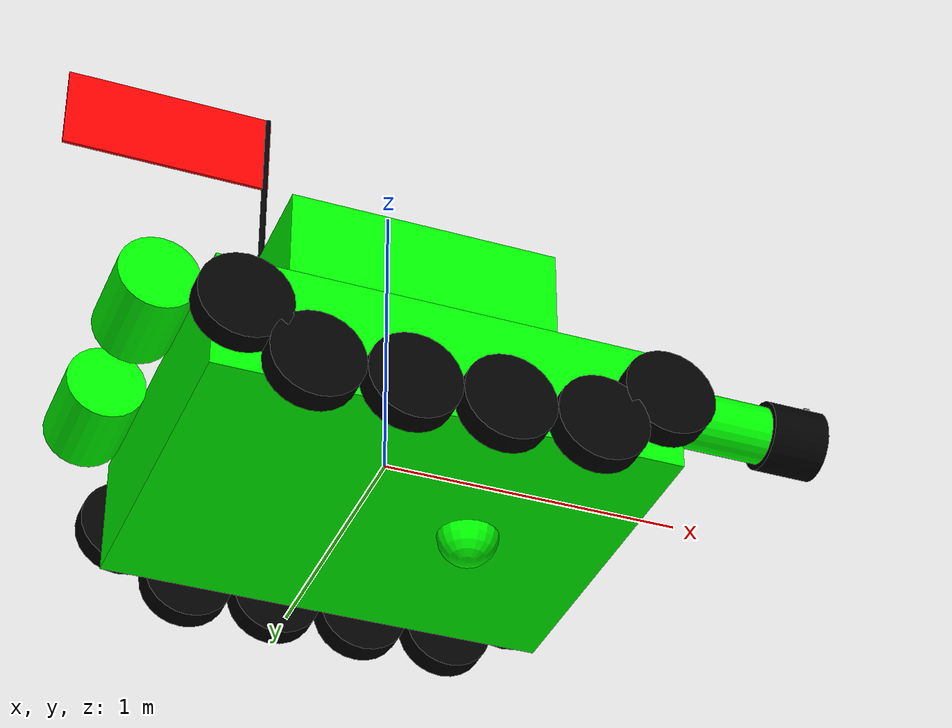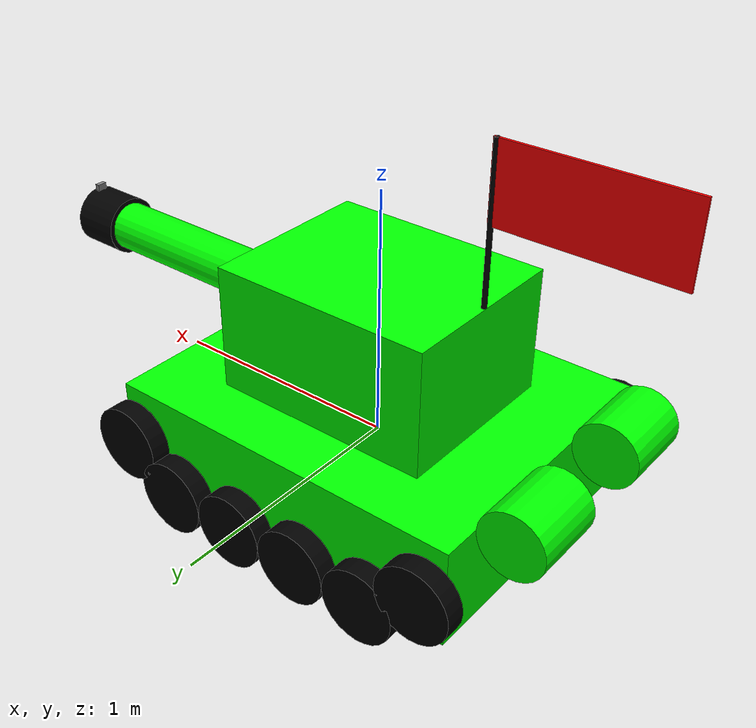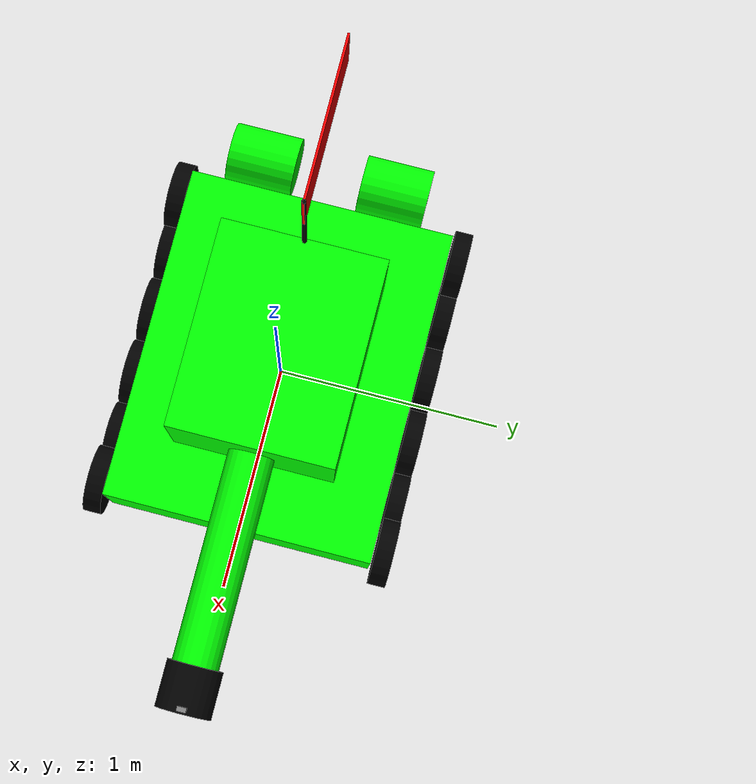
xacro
<?xml version="1.0"?>
<robot name="tank" xmlns:xacro="http://ros.org/wiki/xacro">

  <!-- Define robot constants -->
  <xacro:property name="base_width" value="1.20"/>
  <xacro:property name="base_length" value="1.50"/>
  <xacro:property name="base_height" value="0.40"/>
  <xacro:property name="base_mass" value="5"/>

  <xacro:property name="cabin_width" value="${0.6 * base_width}"/>
  <xacro:property name="cabin_length" value="${0.6 * base_length}"/>
  <xacro:property name="cabin_height" value="0.50"/>

  <xacro:property name="barrel_radius" value="0.10"/>
  <xacro:property name="barrel_length" value="1.00"/>

  <xacro:property name="gunpoint_radius" value="${barrel_radius * 1.2}"/>
  <xacro:property name="gunpoint_length" value="${barrel_length * 0.2}"/>

  <xacro:property name="keg_radius" value="0.13"/>
  <xacro:property name="keg_length" value="0.30"/>

  <xacro:property name="flagpole_radius" value="0.01"/>
  <xacro:property name="flagpole_length" value="0.60"/>

  <xacro:property name="flag_width" value="0.01"/>
  <xacro:property name="flag_length" value="0.7"/>
  <xacro:property name="flag_height" value="0.3"/>

  <xacro:property name="wheel_radius" value="0.15"/>
  <xacro:property name="wheel_thickness" value="0.08"/>
  <xacro:property name="wheel_ygap" value="0.05"/>
  <xacro:property name="wheel_zoff" value="0.15"/>
  <xacro:property name="wheel_xoff" value="${3 * wheel_radius}"/>
  <xacro:property name="wheel_mass" value="0.5"/>
  <xacro:property name="add_wheel_mass" value="0.0001"/>

  <xacro:property name="caster_xoff" value="0.28"/>

  <material name="red">
    <color rgba="1 0 0 1"/>
  </material>

  <material name="green">
    <color rgba="0 1 0 1"/>
  </material>

  <material name="black">
    <color rgba="0 0 0 1"/>
  </material>

  <!-- Define intertial property macros  -->
  <xacro:macro name="box_inertia" params="m w h d">
    <inertial>
      <origin xyz="0 0 0" rpy="${pi/2} 0 ${pi/2}"/>
      <mass value="${m}"/>
      <inertia ixx="${(m/12) * (h*h + d*d)}" ixy="0.0" ixz="0.0"
               iyy="${(m/12) * (w*w + d*d)}" iyz="0.0"
               izz="${(m/12) * (w*w + h*h)}"/>
    </inertial>
  </xacro:macro>

  <xacro:macro name="cylinder_inertia" params="m r h">
    <inertial>
      <origin xyz="0 0 0" rpy="${pi/2} 0 0" />
      <mass value="${m}"/>
      <inertia ixx="${(m/12) * (3*r*r + h*h)}" ixy = "0" ixz = "0"
               iyy="${(m/12) * (3*r*r + h*h)}" iyz = "0"
               izz="${(m/2) * (r*r)}"/>
    </inertial>
  </xacro:macro>

  <xacro:macro name="sphere_inertia" params="m r">
    <inertial>
      <mass value="${m}"/>
      <inertia ixx="${(2/5) * m * (r*r)}" ixy="0.0" ixz="0.0"
               iyy="${(2/5) * m * (r*r)}" iyz="0.0"
               izz="${(2/5) * m * (r*r)}"/>
    </inertial>
  </xacro:macro>

  <!-- Arguments -->
  <xacro:arg name="use_lidar" default="true" />
  <xacro:arg name="use_camera" default="true" />

  <!-- Includes -->
  <xacro:include filename="$(find diff_drive_robot)/urdf/robot.gazebo.xacro"/>

  <xacro:if value="$(arg use_lidar)">
    <xacro:include filename="$(find diff_drive_robot)/urdf/lidar.urdf.xacro"/>
  </xacro:if>

  <xacro:if value="$(arg use_camera)">
    <xacro:include filename="$(find diff_drive_robot)/urdf/depth_camera.urdf.xacro"/>
  </xacro:if>

    <!-- Robot Base -->
  <link name="base_link">
    <visual>
      <geometry>
        <box size="${base_length} ${base_width} ${base_height}"/>
      </geometry>

      <material name="green"/>
    </visual>

    <collision>
      <geometry>
        <box size="${base_length} ${base_width} ${base_height}"/>
      </geometry>
    </collision>

    <xacro:box_inertia m="${base_mass}" w="${base_width}" d="${base_length}" h="${base_height}"/>
  </link>

  <gazebo reference="base_link">
      <material>Gazebo/Green</material>
  </gazebo>

    <!-- Cabin -->
  <link name="cabin_link">
    <visual>
      <geometry>
        <box size="${cabin_length} ${cabin_width} ${cabin_height}"/>
      </geometry>

      <material name="green"/>
    </visual>

  </link>

  <joint name="cabin_joint" type="fixed">
    <parent link="base_link"/>
    <child link="cabin_link"/>
    <origin xyz="0.0 0.0 ${base_height / 2 + cabin_height / 2}" rpy="0 0 0"/>
  </joint>

  <gazebo reference="cabin_link">
      <material>Gazebo/Green</material>
  </gazebo>

    <!-- Barrel -->
  <link name="barrel_link">
    <visual>
      <geometry>
        <cylinder radius="${barrel_radius}" length="${barrel_length}"/>
      </geometry>

      <material name="green"/>
    </visual>

  </link>

  <joint name="barrel_joint" type="fixed">
    <parent link="cabin_link"/>
    <child link="barrel_link"/>
    <origin xyz="${cabin_length / 2 + barrel_length / 2} 0 0" rpy="0 ${pi / 2} 0"/>
  </joint>

  <gazebo reference="barrel_link">
      <material>Gazebo/Green</material>
  </gazebo>

    <!-- Gunpoint -->
  <link name="gunpoint_link">
    <visual>
      <geometry>
        <cylinder radius="${gunpoint_radius}" length="${gunpoint_length}"/>
      </geometry>

      <material name="black"/>
    </visual>

  </link>

  <joint name="gunpoint_joint" type="fixed">
    <parent link="barrel_link"/>
    <child link="gunpoint_link"/>
    <origin xyz="0 0 ${barrel_length / 2}" rpy="0 0 0"/>
  </joint>

  <gazebo reference="gunpoint_link">
      <material>Gazebo/Black</material>
  </gazebo>

    <!-- Keg -->
  <xacro:macro name="keg" params="prefix reflect">
    <link name="${prefix}_link">
      <visual>
        <geometry>
          <cylinder radius="${keg_radius}" length="${keg_length}"/>
        </geometry>

        <material name="green"/>
      </visual>

    </link>

    <joint name="${prefix}_joint" type="fixed">
      <parent link="base_link"/>
      <child link="${prefix}_link"/>
      <origin xyz="${-base_length / 2 - keg_radius} ${reflect * base_width / 4} ${base_height / 2}" rpy="${pi / 2} 0 0"/>
    </joint>

    <gazebo reference="${prefix}_link">
        <material>Gazebo/Green</material>
    </gazebo>
  </xacro:macro>

  <xacro:keg prefix="keg_l" reflect="-1"/>
  <xacro:keg prefix="keg_r" reflect="1"/>

    <!-- Flagpole -->
  <link name="flagpole_link">
    <visual>
      <geometry>
        <cylinder radius="${flagpole_radius}" length="${flagpole_length}"/>
      </geometry>

      <material name="black"/>
    </visual>

  </link>

  <joint name="flagpole_joint" type="fixed">
    <parent link="cabin_link"/>
    <child link="flagpole_link"/>
    <origin xyz="${-cabin_length / 2 + flagpole_radius} 0 ${cabin_height / 2 + flagpole_length / 2}" rpy="0 0 0"/>
  </joint>

  <gazebo reference="flagpole_link">
      <material>Gazebo/Black</material>
  </gazebo>

    <!-- Flag -->
  <link name="flag_link">
    <visual>
      <geometry>
        <box size="${flag_length} ${flag_width} ${flag_height}"/>
      </geometry>

      <material name="red"/>
    </visual>

  </link>

  <joint name="flag_joint" type="fixed">
    <parent link="flagpole_link"/>
    <child link="flag_link"/>
    <origin xyz="${-flag_length / 2 + flagpole_radius} 0 ${flagpole_length / 2 - flag_height / 2}" rpy="0 0 0"/>
  </joint>

  <gazebo reference="flag_link">
      <material>Gazebo/Red</material>
  </gazebo>

    <!-- Robot Footprint -->
  <link name="base_footprint"/>

  <joint name="base_joint" type="fixed">
    <parent link="base_link"/>
    <child link="base_footprint"/>
    <origin xyz="0.0 0.0 ${-(wheel_radius+wheel_zoff)}" rpy="0 0 0"/>
  </joint>

    <!-- Wheels -->
  <xacro:macro name="driving_wheel" params="prefix xoff zoff y_reflect mass">
    <link name="${prefix}_link">
      <visual>
        <origin xyz="0 0 0" rpy="${pi/2} 0 0"/>
        <geometry>
          <cylinder radius="${wheel_radius}" length="${wheel_thickness}"/>
        </geometry>

        <material name="black"/>

      </visual>

      <collision>
        <origin xyz="0 0 0" rpy="${pi/2} 0 0"/>
        <geometry>
          <cylinder radius="${wheel_radius}" length="${wheel_thickness}"/>
        </geometry>
      </collision>

      <xacro:cylinder_inertia m="${mass}" r="${wheel_radius}" h="${wheel_thickness}"/>
    </link>

    <gazebo reference="${prefix}_link">
        <material>Gazebo/Black</material>
    </gazebo>

    <joint name="${prefix}_joint" type="continuous">
      <parent link="base_link"/>
      <child link="${prefix}_link"/>
      <origin xyz="${-xoff} ${y_reflect*(base_width / 2 + wheel_ygap)} ${-zoff}" rpy="0 0 0"/>
      <axis xyz="0 1 0"/>
    </joint>
  </xacro:macro>

  <xacro:macro name="wheel" params="prefix xoff zoff y_reflect">
    <link name="${prefix}_link">
      <visual>
        <origin xyz="0 0 0" rpy="${pi/2} 0 0"/>
        <geometry>
          <cylinder radius="${wheel_radius}" length="${wheel_thickness}"/>
        </geometry>

        <material name="black"/>

      </visual>
    </link>

    <gazebo reference="${prefix}_link">
        <material>Gazebo/Black</material>
    </gazebo>

    <joint name="${prefix}_joint" type="fixed">
      <parent link="base_link"/>
      <child link="${prefix}_link"/>
      <origin xyz="${-xoff} ${y_reflect*(base_width / 2 + wheel_ygap)} ${-zoff}" rpy="0 0 0"/>
      <axis xyz="0 1 0"/>
    </joint>
  </xacro:macro>

  <xacro:driving_wheel prefix="drivewhl_l" xoff="${wheel_xoff}" zoff="${wheel_zoff}" y_reflect="1" mass="${wheel_mass}"/>
  <xacro:wheel prefix="wheel_l1" xoff="${wheel_xoff + 1.5 * wheel_radius}" zoff="${wheel_zoff - wheel_radius}" y_reflect="1"/>
  <xacro:wheel prefix="wheel_l2" xoff="${wheel_xoff - 2 * wheel_radius}" zoff="${wheel_zoff}" y_reflect="1"/>
  <xacro:wheel prefix="wheel_l3" xoff="${wheel_xoff - 4 * wheel_radius}" zoff="${wheel_zoff}" y_reflect="1"/>
  <xacro:wheel prefix="wheel_l4" xoff="${wheel_xoff - 6 * wheel_radius}" zoff="${wheel_zoff}" y_reflect="1"/>
  <xacro:wheel prefix="wheel_l5" xoff="${wheel_xoff - 7.5 * wheel_radius}" zoff="${wheel_zoff - wheel_radius}" y_reflect="1"/>

  <xacro:driving_wheel prefix="drivewhl_r" xoff="${wheel_xoff}" zoff="${wheel_zoff}" y_reflect="-1" mass="${wheel_mass}"/>
  <xacro:wheel prefix="wheel_r1" xoff="${wheel_xoff + 1.5 * wheel_radius}" zoff="${wheel_zoff - wheel_radius}" y_reflect="-1"/>
  <xacro:wheel prefix="wheel_r2" xoff="${wheel_xoff - 2 * wheel_radius}" zoff="${wheel_zoff}" y_reflect="-1"/>
  <xacro:wheel prefix="wheel_r3" xoff="${wheel_xoff - 4 * wheel_radius}" zoff="${wheel_zoff}" y_reflect="-1"/>
  <xacro:wheel prefix="wheel_r4" xoff="${wheel_xoff - 6 * wheel_radius}" zoff="${wheel_zoff}" y_reflect="-1"/>
  <xacro:wheel prefix="wheel_r5" xoff="${wheel_xoff - 7.5 * wheel_radius}" zoff="${wheel_zoff - wheel_radius}" y_reflect="-1"/>

    <!-- Caster Wheel -->
  <link name="front_caster">
    <visual>
      <geometry>
        <sphere radius="${(wheel_radius+wheel_zoff-(base_height/2))}"/>
      </geometry>

      <material name="green"/>
    </visual>

    <collision>
      <geometry>
        <sphere radius="${(wheel_radius+wheel_zoff-(base_height/2))}"/>
      </geometry>
    </collision>

    <xacro:sphere_inertia m="0.5" r="${(wheel_radius+wheel_zoff-(base_height/2))}"/>
  </link>

  <joint name="caster_joint" type="fixed">
    <parent link="base_link"/>
    <child link="front_caster"/>
    <origin xyz="${caster_xoff} 0.0 ${-(base_height/2)}" rpy="0 0 0"/>
  </joint>

  <gazebo reference="front_caster">
    <material>Gazebo/Green</material>
    <mu1 value="0.001"/>
    <mu2 value="0.001"/>
  </gazebo>

</robot>

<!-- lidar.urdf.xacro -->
<robot xmlns:xacro="http://www.ros.org/wiki/xacro" >

    <xacro:property name="lidar_radius" value="0.05"/>
    <xacro:property name="lidar_length" value="0.03"/>

    <link name="lidar_link">
        <visual>
            <origin xyz="0 0 0" rpy="0 ${pi/2} 0"/>
            <geometry>
                <cylinder radius="${lidar_radius}" length="${lidar_length}"/>
            </geometry>

            <material name="black"/>

        </visual>
    </link>

    <gazebo reference="lidar_link">
        <material>Gazebo/Black</material>

        <sensor name='gpu_lidar' type='gpu_lidar'>"
            <gz_frame_id>robot/lidar_link</gz_frame_id>
            <pose>0 0 0 0 0 0</pose>
            <topic>/scan</topic>
            <update_rate>10</update_rate>
            <always_on>true</always_on>
            <visualize>true</visualize>
            <ray>
                <scan>
                    <horizontal>
                        <samples>360</samples>
                        <min_angle>${-pi / 4}</min_angle>
                        <max_angle>${pi / 4}</max_angle>
                    </horizontal>
                </scan>

                <range>
                    <min>0.08</min>
                    <max>5.0</max>
                </range>

                <noise>
                    <type>gaussian</type>
                    <mean>0.0</mean>
                    <stddev>0.007</stddev>
                </noise>
            </ray>
        </sensor>
    </gazebo>

    <joint name="lidar_joint" type="fixed">
        <parent link="base_link"/>
        <child link="lidar_link"/>
        <origin xyz="${base_length / 2} 0 0" rpy="0 0 0"/>
    </joint>

</robot>

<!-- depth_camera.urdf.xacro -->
<robot xmlns:xacro="http://www.ros.org/wiki/xacro">

    <xacro:property name="camera_width" value="0.04"/>
    <xacro:property name="camera_length" value="0.02"/>
    <xacro:property name="camera_height" value="0.03"/>

    <material name="aluminum">
      <color rgba="0.5 0.5 0.5 1"/>
    </material>

    <link name="camera_link">
        <visual>
            <geometry>
                <box size="${camera_length} ${camera_width} ${camera_height}"/>
            </geometry>

            <material name="aluminum"/>

        </visual>
    </link>

    <joint name="camera_joint" type="fixed">
        <parent link="gunpoint_link"/>
        <child link="camera_link"/>
        <origin xyz="${-gunpoint_radius - camera_height / 3} 0 ${gunpoint_length / 2 - camera_length}" rpy="0 ${-pi / 2} 0"/>
    </joint>

    <gazebo reference="camera_link">

        <sensor name='depth_sensor_frame' type='depth_camera'>"
            <gz_frame_id>robot/camera_link</gz_frame_id>
            <always_on>true</always_on>
            <update_rate>10</update_rate>
            <camera>
                <horizontal_fov>1.51843645</horizontal_fov>
                <image>
                    <width>848</width>
                    <height>480</height>
                    <format>R_FLOAT32</format>
                </image>
                <clip>
                    <near>0.1</near>
                    <far>10</far>
                </clip>
                <lens>
                    <intrinsics>
                    <fx>421.61578369140625</fx>
                    <fy>421.61578369140625</fy>
                    <cx>422.2854309082031</cx>
                    <cy>236.57237243652344</cy>
                    <s>0</s>
                    </intrinsics>
                </lens>
                <noise>
                    <type>gaussian</type>
                    <mean>0.0</mean>
                    <stddev>0.007</stddev>
                </noise>
            </camera>
        </sensor>

        <sensor name="color_sensor_frame" type="camera">
            <gz_frame_id>robot/camera_link</gz_frame_id>
            <update_rate>30</update_rate>
            <always_on>true</always_on>
            <camera>
                <horizontal_fov>1.20427718</horizontal_fov>
                <image>
                    <width>848</width>
                    <height>480</height>
                </image>
                <clip>
                    <near>0.1</near>
                    <far>50</far>
                </clip>
                <lens>
                    <intrinsics>
                    <fx>615.9603271484375</fx>
                    <fy>616.227294921875</fy>
                    <cx>419.83026123046875</cx>
                    <cy>245.1431427001953</cy>
                    <s>0</s>
                    </intrinsics>
                </lens>
            </camera>
        </sensor>
    </gazebo>
</robot>
